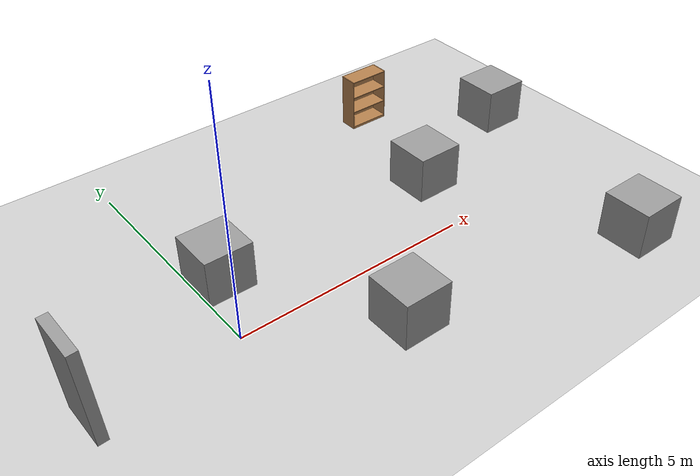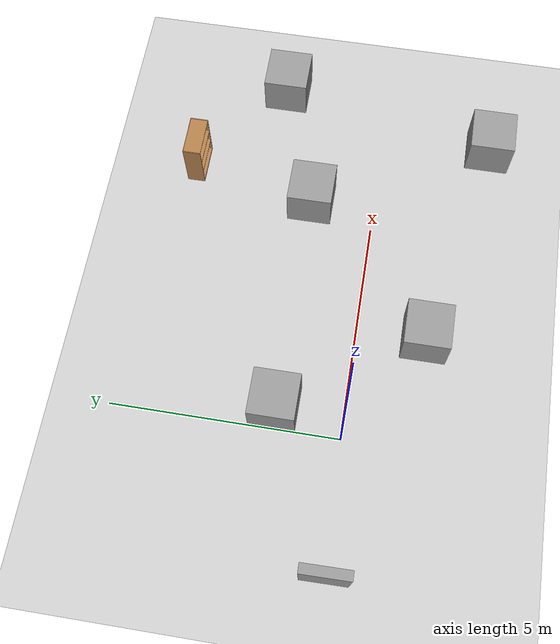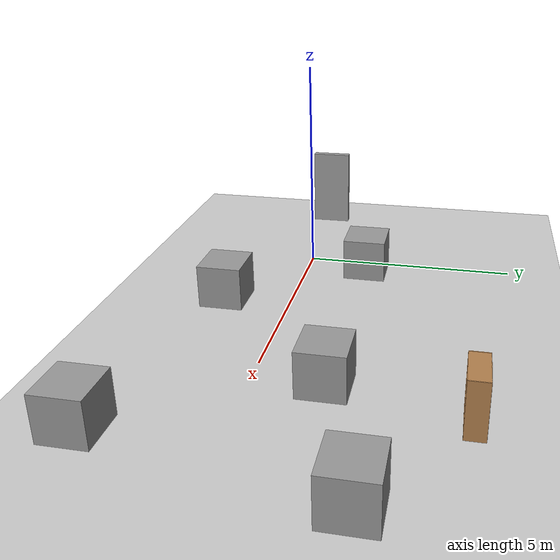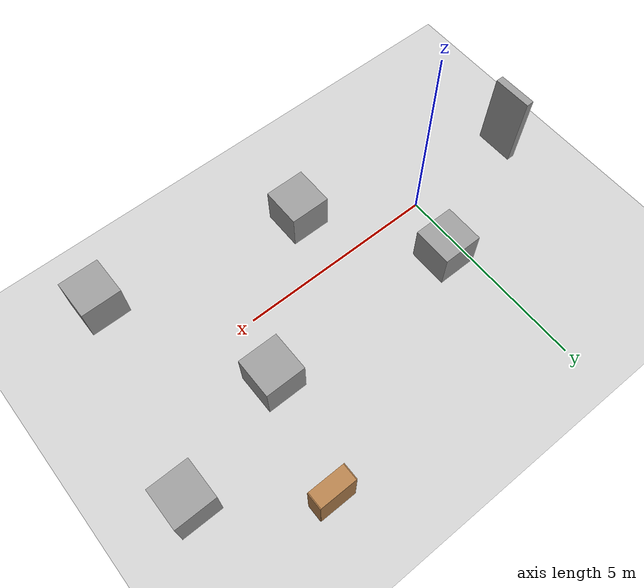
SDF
<sdf version="1.6">
 <world name="default">
  <model name="ground_plane">
   <static>1</static>
   <link name="link">
    <collision name="collision">
     <geometry><plane><normal>0 0 1</normal><size>100 100</size></plane></geometry>
     <surface><friction><ode><mu>100</mu><mu2>50</mu2></ode></friction></surface>
    </collision>
    <visual name="visual">
     <cast_shadows>0</cast_shadows>
     <geometry><plane><normal>0 0 1</normal><size>100 100</size></plane></geometry>
     <material>
      <script><uri>file://media/materials/scripts/gazebo.material</uri><name>Gazebo/Grey</name></script>
     </material>
    </visual>
   </link>
  </model>
  <model name="bookshelf">
   <static>1</static>
   <link name="link">
    <inertial><mass>1</mass></inertial>
    <collision name="back">
     <pose>0 0.005 0.6 0 -0 0</pose>
     <geometry><box><size>0.9 0.01 1.2</size></box></geometry>
    </collision>
    <visual name="visual1">
     <pose>0 0.005 0.6 0 -0 0</pose>
     <geometry><box><size>0.9 0.01 1.2</size></box></geometry>
     <material>
      <script><uri>file://media/materials/scripts/gazebo.material</uri><name>Gazebo/Wood</name></script>
     </material>
    </visual>
    <collision name="left_side">
     <pose>0.45 -0.195 0.6 0 -0 0</pose>
     <geometry><box><size>0.02 0.4 1.2</size></box></geometry>
    </collision>
    <visual name="visual2">
     <pose>0.45 -0.195 0.6 0 -0 0</pose>
     <geometry><box><size>0.02 0.4 1.2</size></box></geometry>
     <material>
      <script><uri>file://media/materials/scripts/gazebo.material</uri><name>Gazebo/Wood</name></script>
     </material>
    </visual>
    <collision name="right_side">
     <pose>-0.45 -0.195 0.6 0 -0 0</pose>
     <geometry><box><size>0.02 0.4 1.2</size></box></geometry>
    </collision>
    <visual name="visual3">
     <pose>-0.45 -0.195 0.6 0 -0 0</pose>
     <geometry><box><size>0.02 0.4 1.2</size></box></geometry>
     <material>
      <script><uri>file://media/materials/scripts/gazebo.material</uri><name>Gazebo/Wood</name></script>
     </material>
    </visual>
    <collision name="bottom">
     <pose>0 -0.195 0.03 0 -0 0</pose>
     <geometry><box><size>0.88 0.4 0.06</size></box></geometry>
    </collision>
    <visual name="visual4">
     <pose>0 -0.195 0.03 0 -0 0</pose>
     <geometry><box><size>0.88 0.4 0.06</size></box></geometry>
     <material>
      <script><uri>file://media/materials/scripts/gazebo.material</uri><name>Gazebo/Wood</name></script>
     </material>
    </visual>
    <collision name="top">
     <pose>0 -0.195 1.19 0 -0 0</pose>
     <geometry><box><size>0.88 0.4 0.02</size></box></geometry>
    </collision>
    <visual name="visual5">
     <pose>0 -0.195 1.19 0 -0 0</pose>
     <geometry><box><size>0.88 0.4 0.02</size></box></geometry>
     <material>
      <script><uri>file://media/materials/scripts/gazebo.material</uri><name>Gazebo/Wood</name></script>
     </material>
    </visual>
    <collision name="low_shelf">
     <pose>0 -0.195 0.43 0 -0 0</pose>
     <geometry><box><size>0.88 0.4 0.02</size></box></geometry>
    </collision>
    <visual name="visual6">
     <pose>0 -0.195 0.43 0 -0 0</pose>
     <geometry><box><size>0.88 0.4 0.02</size></box></geometry>
     <material>
      <script><uri>file://media/materials/scripts/gazebo.material</uri><name>Gazebo/Wood</name></script>
     </material>
    </visual>
    <collision name="high_shelf">
     <pose>0 -0.195 0.8 0 -0 0</pose>
     <geometry><box><size>0.88 0.4 0.02</size></box></geometry>
    </collision>
    <visual name="visual7">
     <pose>0 -0.195 0.8 0 -0 0</pose>
     <geometry><box><size>0.88 0.4 0.02</size></box></geometry>
     <material>
      <script><uri>file://media/materials/scripts/gazebo.material</uri><name>Gazebo/Wood</name></script>
     </material>
    </visual>
   </link>
   <pose>6.15215 4.45945 0 0 -0 0</pose>
  </model>
  <model name="door">
   <link name="link">
    <inertial>
     <mass>1</mass>
     <inertia>
      <ixx>0.166667</ixx>
      <ixy>0</ixy>
      <ixz>0</ixz>
      <iyy>0.166667</iyy>
      <iyz>0</iyz>
      <izz>0.166667</izz>
     </inertia>
    </inertial>
    <pose>0 0 0.5 0 -0 0</pose>
    <visual name="visual">
     <geometry><box><size>0.2 1 2</size></box></geometry>
     <material>
      <script><name>Gazebo/Grey</name><uri>file://media/materials/scripts/gazebo.material</uri></script>
      <shader type="vertex"><normal_map>__default__</normal_map></shader>
      <ambient>0.3 0.3 0.3 1</ambient>
      <diffuse>0.7 0.7 0.7 1</diffuse>
      <specular>0.01 0.01 0.01 1</specular>
      <emissive>0 0 0 1</emissive>
     </material>
    </visual>
    <collision name="collision">
     <geometry><box><size>0.2 1 2</size></box></geometry>
     <surface>
      <friction>
       <ode><mu>1</mu><mu2>1</mu2><fdir1>0 0 0</fdir1><slip1>0</slip1><slip2>0</slip2></ode>
       <torsional>
        <coefficient>1</coefficient>
        <patch_radius>0</patch_radius>
        <surface_radius>0</surface_radius>
        <use_patch_radius>1</use_patch_radius>
        <ode><slip>0</slip></ode>
       </torsional>
      </friction>
      <bounce><restitution_coefficient>0</restitution_coefficient><threshold>1e+06</threshold></bounce>
      <contact>
       <collide_without_contact>0</collide_without_contact>
       <collide_without_contact_bitmask>1</collide_without_contact_bitmask>
       <collide_bitmask>1</collide_bitmask>
       <ode>
        <soft_cfm>0</soft_cfm>
        <soft_erp>0.2</soft_erp>
        <kp>1e+13</kp>
        <kd>1</kd>
        <max_vel>0.01</max_vel>
        <min_depth>0</min_depth>
       </ode>
       <bullet>
        <split_impulse>1</split_impulse>
        <split_impulse_penetration_threshold>-0.01</split_impulse_penetration_threshold>
        <soft_cfm>0</soft_cfm>
        <soft_erp>0.2</soft_erp>
        <kp>1e+13</kp>
        <kd>1</kd>
       </bullet>
      </contact>
     </surface>
    </collision>
   </link>
   <static>0</static>
   <pose>-2.8404 -0.062168 0.503607 8.2e-05 -0.04465 0.013577</pose>
  </model>
  <model name="unit_box">
   <pose>8.48516 2.4962 0.5 0 -0 0</pose>
   <link name="link">
    <inertial>
     <mass>1</mass>
     <inertia>
      <ixx>0.166667</ixx>
      <ixy>0</ixy>
      <ixz>0</ixz>
      <iyy>0.166667</iyy>
      <iyz>0</iyz>
      <izz>0.166667</izz>
     </inertia>
    </inertial>
    <collision name="collision"><geometry><box><size>1 1 1</size></box></geometry></collision>
    <visual name="visual">
     <geometry><box><size>1 1 1</size></box></geometry>
     <material>
      <script><name>Gazebo/Grey</name><uri>file://media/materials/scripts/gazebo.material</uri></script>
     </material>
    </visual>
   </link>
  </model>
  <model name="unit_box_1">
   <pose>5.51655 1.46916 0.5 -0 -0 -0</pose>
   <link name="link">
    <inertial>
     <mass>1</mass>
     <inertia>
      <ixx>0.166667</ixx>
      <ixy>0</ixy>
      <ixz>0</ixz>
      <iyy>0.166667</iyy>
      <iyz>0</iyz>
      <izz>0.166667</izz>
     </inertia>
    </inertial>
    <collision name="collision"><geometry><box><size>1 1 1</size></box></geometry></collision>
    <visual name="visual">
     <geometry><box><size>1 1 1</size></box></geometry>
     <material>
      <script><name>Gazebo/Grey</name><uri>file://media/materials/scripts/gazebo.material</uri></script>
     </material>
    </visual>
   </link>
  </model>
  <model name="unit_box_2">
   <pose>2.5092 -1.50217 0.5 0 -0 0</pose>
   <link name="link">
    <inertial>
     <mass>1</mass>
     <inertia>
      <ixx>0.166667</ixx>
      <ixy>0</ixy>
      <ixz>0</ixz>
      <iyy>0.166667</iyy>
      <iyz>0</iyz>
      <izz>0.166667</izz>
     </inertia>
    </inertial>
    <collision name="collision"><geometry><box><size>1 1 1</size></box></geometry></collision>
    <visual name="visual">
     <geometry><box><size>1 1 1</size></box></geometry>
     <material>
      <script><name>Gazebo/Grey</name><uri>file://media/materials/scripts/gazebo.material</uri></script>
     </material>
    </visual>
   </link>
  </model>
  <model name="unit_box_3">
   <pose>0.487377 1.48475 0.5 -0 -0 -0</pose>
   <link name="link">
    <inertial>
     <mass>1</mass>
     <inertia>
      <ixx>0.166667</ixx>
      <ixy>0</ixy>
      <ixz>0</ixz>
      <iyy>0.166667</iyy>
      <iyz>0</iyz>
      <izz>0.166667</izz>
     </inertia>
    </inertial>
    <collision name="collision"><geometry><box><size>1 1 1</size></box></geometry></collision>
    <visual name="visual">
     <geometry><box><size>1 1 1</size></box></geometry>
     <material>
      <script><name>Gazebo/Grey</name><uri>file://media/materials/scripts/gazebo.material</uri></script>
     </material>
    </visual>
   </link>
  </model>
  <model name="unit_box_4">
   <pose>7.5288 -2.49392 0.5 0 -0 0</pose>
   <link name="link">
    <inertial>
     <mass>1</mass>
     <inertia>
      <ixx>0.166667</ixx>
      <ixy>0</ixy>
      <ixz>0</ixz>
      <iyy>0.166667</iyy>
      <iyz>0</iyz>
      <izz>0.166667</izz>
     </inertia>
    </inertial>
    <collision name="collision"><geometry><box><size>1 1 1</size></box></geometry></collision>
    <visual name="visual">
     <geometry><box><size>1 1 1</size></box></geometry>
     <material>
      <script><name>Gazebo/Grey</name><uri>file://media/materials/scripts/gazebo.material</uri></script>
     </material>
    </visual>
   </link>
  </model>
 </world>
</sdf>
